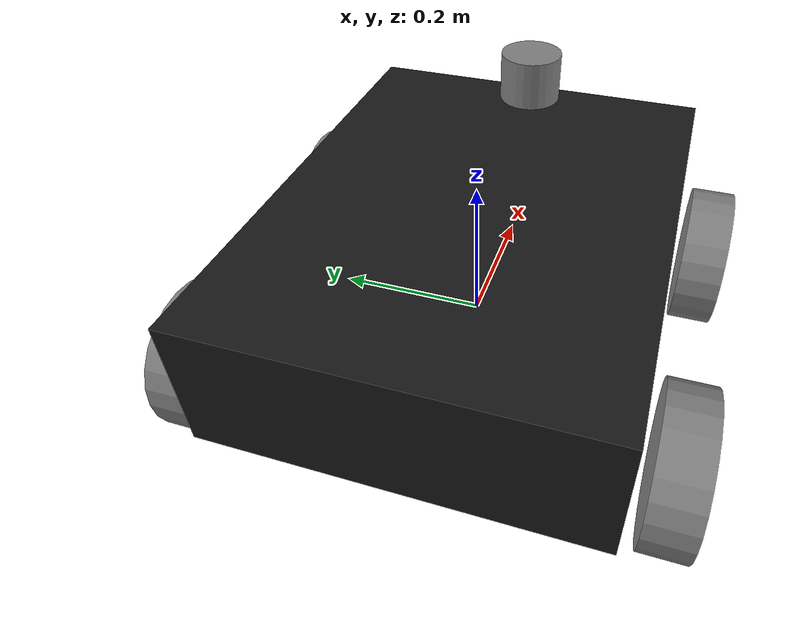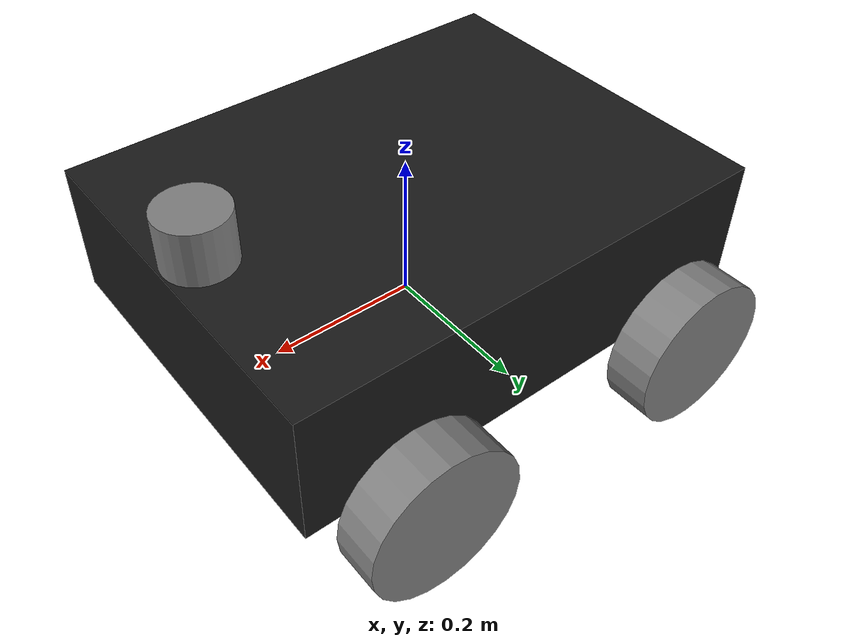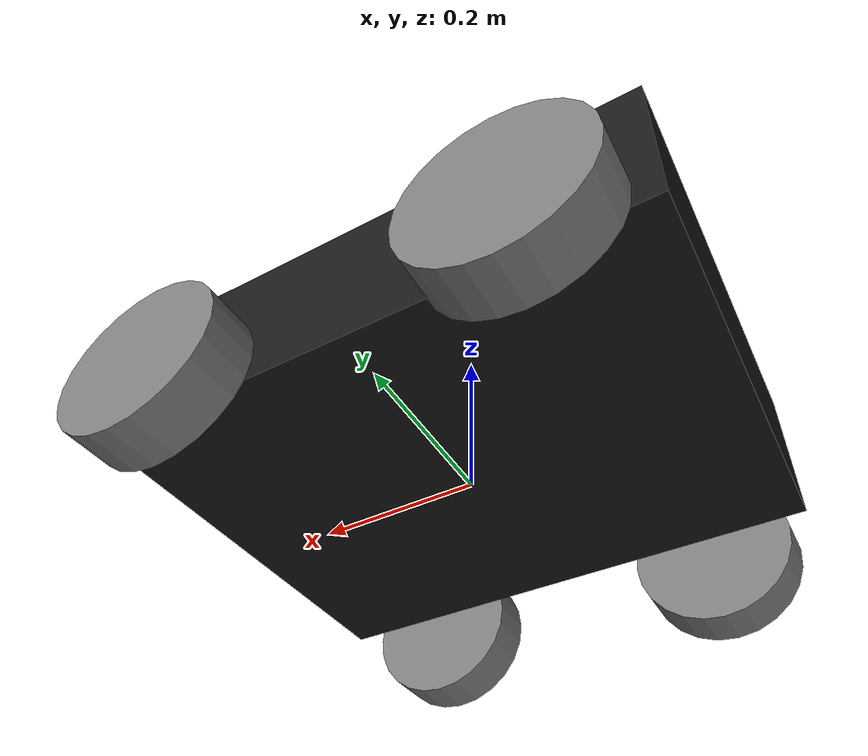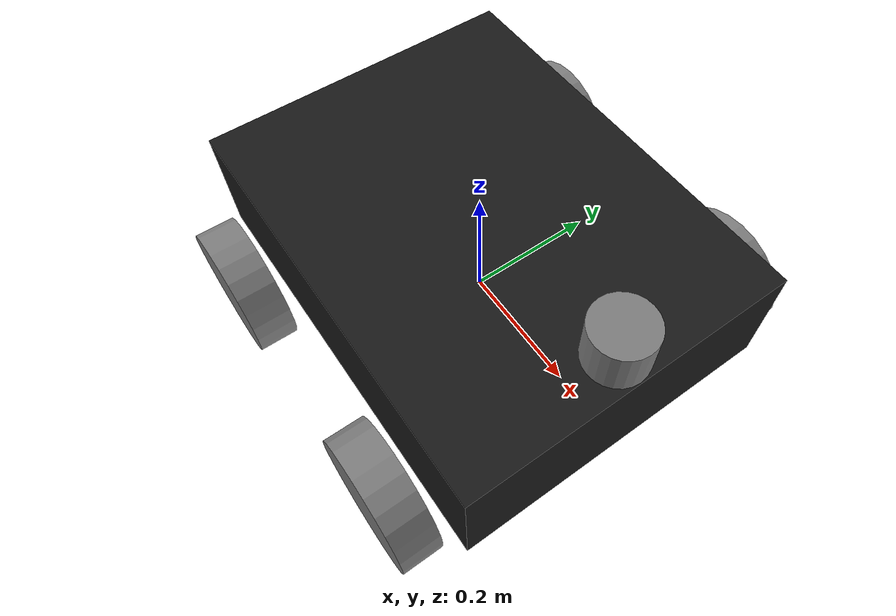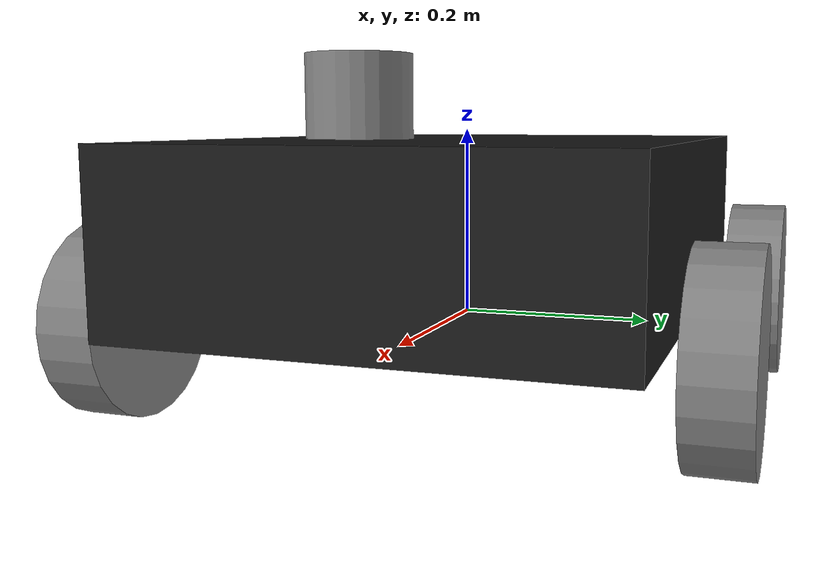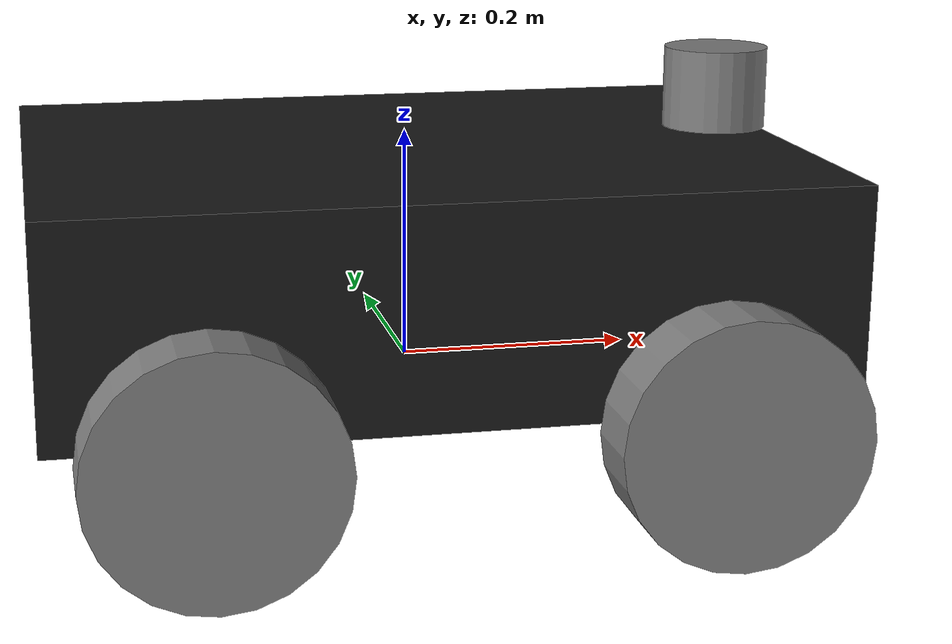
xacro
<?xml version="1.0"?>
<robot name="agv_robot" xmlns:xacro="http://www.ros.org/wiki/xacro">

  <xacro:arg name="namespace" default="agv"/>
  <xacro:arg name="prefix" default=""/>
  <xacro:arg name="enable_ros2_control" default="true"/>

  <xacro:property name="PI" value="3.14159265"/>
  <xacro:property name="robot_namespace" value="$(arg namespace)"/>
  <xacro:property name="prefix" value="$(arg prefix)"/>
  <xacro:property name="base_x"       value="0.65"/>
  <xacro:property name="base_y"       value="0.50"/>
  <xacro:property name="base_z"       value="0.18"/>
  <xacro:property name="wheel_r"      value="0.10"/>
  <xacro:property name="wheel_w"      value="0.06"/>
  <xacro:property name="track"        value="0.30"/>
  <xacro:property name="wheel_base_x" value="0.20"/>

  <material name="agv_black"> <color rgba="0.1 0.1 0.1 1.0"/></material>
  <material name="agv_grey">  <color rgba="0.5 0.5 0.5 1.0"/></material>
  <material name="agv_yellow"><color rgba="1.0 0.8 0.0 1.0"/></material>

  <link name="${prefix}base_footprint">
    <visual><geometry><sphere radius="0.001"/></geometry></visual>
  </link>

  <joint name="${prefix}base_footprint_joint" type="fixed">
    <parent link="${prefix}base_footprint"/>
    <child  link="${prefix}base_link"/>
    <origin xyz="0 0 ${wheel_r}" rpy="0 0 0"/>
  </joint>

  <link name="${prefix}base_link">
    <visual>
      <geometry><box size="${base_x} ${base_y} ${base_z}"/></geometry>
      <material name="agv_black"/> </visual>
    <collision>
      <geometry><box size="${base_x} ${base_y} ${base_z}"/></geometry>
    </collision>
    <inertial>
      <origin xyz="0 0 -0.05" rpy="0 0 0"/>
      <mass value="40.0"/>
      <inertia ixx="0.8" ixy="0.0" ixz="0.0" iyy="1.2" iyz="0.0" izz="1.5"/>
    </inertial>
  </link>

  <gazebo reference="${prefix}base_link">
    <material>Gazebo/Black</material>
  </gazebo>

  <xacro:macro name="wheel" params="name px py">
    <joint name="${prefix}${name}_joint" type="continuous">
      <parent link="${prefix}base_link"/>
      <child  link="${prefix}${name}_link"/>
      <origin xyz="${px} ${py} ${-base_z/2}" rpy="${-PI/2} 0 0"/>
      <axis xyz="0 0 1"/>
      <dynamics damping="0.1" friction="0.5"/>
    </joint>
    <link name="${prefix}${name}_link">
      <visual>
        <geometry><cylinder radius="${wheel_r}" length="${wheel_w}"/></geometry>
        <material name="agv_grey"/>
      </visual>
      <collision>
        <geometry><cylinder radius="${wheel_r-0.001}" length="${wheel_w}"/></geometry>
      </collision>
      <inertial>
        <mass value="2.5"/>
        <inertia ixx="0.008" ixy="0" ixz="0" iyy="0.008" iyz="0" izz="0.012"/>
      </inertial>
    </link>
  </xacro:macro>

  <xacro:wheel name="front_left_wheel"  px=" ${wheel_base_x}" py=" ${track}"/>
  <xacro:wheel name="front_right_wheel" px=" ${wheel_base_x}" py="-${track}"/>
  <xacro:wheel name="rear_left_wheel"   px="-${wheel_base_x}" py=" ${track}"/>
  <xacro:wheel name="rear_right_wheel"  px="-${wheel_base_x}" py="-${track}"/>

  <joint name="${prefix}lidar_joint" type="fixed">
    <parent link="${prefix}base_link"/>
    <child  link="${prefix}lidar_link"/>
    <origin xyz="0.28 0.0 ${base_z/2+0.04}" rpy="0 0 0"/>
  </joint>
  <link name="${prefix}lidar_link">
    <visual>
      <geometry><cylinder radius="0.045" length="0.07"/></geometry>
      <material name="agv_grey"/>
    </visual>
    <inertial><mass value="0.25"/><inertia ixx="0.0002" ixy="0" ixz="0" iyy="0.0002" iyz="0" izz="0.0003"/></inertial>
  </link>

  <gazebo reference="${prefix}lidar_link">
    <sensor name="${prefix}agv_lidar" type="ray">
      <always_on>true</always_on>
      <update_rate>10</update_rate>
      <visualize>true</visualize>
      <ray>
        <scan>
          <horizontal>
            <samples>720</samples>
            <resolution>1</resolution>
            <min_angle>${-PI}</min_angle>
            <max_angle>${PI}</max_angle>
          </horizontal>
        </scan>
        <range>
          <min>0.12</min>
          <max>12.0</max>
          <resolution>0.01</resolution>
        </range>
        <noise>
          <type>gaussian</type>
          <mean>0.0</mean>
          <stddev>0.01</stddev>
        </noise>
      </ray>
      <plugin name="${prefix}agv_lidar_controller" filename="libgazebo_ros_ray_sensor.so">
        <ros>
          <namespace>/${robot_namespace}</namespace>
          <remapping>~/out:=scan</remapping>
        </ros>
        <output_type>sensor_msgs/LaserScan</output_type>
        <frame_name>${prefix}lidar_link</frame_name>
      </plugin>
    </sensor>
  </gazebo>

  <xacro:if value="$(arg enable_ros2_control)">
    <ros2_control name="${prefix}agv_hardware" type="system">
      <hardware><plugin>gazebo_ros2_control/GazeboSystem</plugin></hardware>
      <joint name="${prefix}front_left_wheel_joint">
        <command_interface name="velocity"><param name="min">-3.0</param><param name="max">3.0</param></command_interface>
        <state_interface name="position"/><state_interface name="velocity"/>
      </joint>
      <joint name="${prefix}front_right_wheel_joint">
        <command_interface name="velocity"><param name="min">-3.0</param><param name="max">3.0</param></command_interface>
        <state_interface name="position"/><state_interface name="velocity"/>
      </joint>
      <joint name="${prefix}rear_left_wheel_joint">
        <command_interface name="velocity"><param name="min">-3.0</param><param name="max">3.0</param></command_interface>
        <state_interface name="position"/><state_interface name="velocity"/>
      </joint>
      <joint name="${prefix}rear_right_wheel_joint">
        <command_interface name="velocity"><param name="min">-3.0</param><param name="max">3.0</param></command_interface>
        <state_interface name="position"/><state_interface name="velocity"/>
      </joint>
    </ros2_control>

    <gazebo>
      <plugin name="${prefix}gazebo_ros2_control" filename="libgazebo_ros2_control.so">
        <parameters>$(find agv_description)/config/ros2_controllers.yaml</parameters>
      </plugin>
    </gazebo>
  </xacro:if>

  <gazebo>
    <plugin name="${prefix}diff_drive_controller" filename="libgazebo_ros_diff_drive.so">
      <ros><namespace>/${robot_namespace}</namespace></ros>
      <left_joint>${prefix}rear_left_wheel_joint</left_joint>
      <right_joint>${prefix}rear_right_wheel_joint</right_joint>
      <wheel_separation>${track * 2}</wheel_separation>
      <wheel_diameter>${wheel_r * 2}</wheel_diameter>
      <max_wheel_torque>150.0</max_wheel_torque> <max_wheel_acceleration>1.0</max_wheel_acceleration>
      <publish_odom>true</publish_odom>
      <publish_odom_tf>true</publish_odom_tf>
      <odometry_frame>${prefix}odom</odometry_frame>
      <robot_base_frame>${prefix}base_footprint</robot_base_frame>
      <command_topic>cmd_vel</command_topic>
    </plugin>
  </gazebo>

  <xacro:macro name="wheel_physics" params="name mu">
    <gazebo reference="${prefix}${name}_link">
      <mu1>${mu}</mu1>
      <mu2>${mu}</mu2>
      <kp>1000000.0</kp>
      <kd>100.0</kd>
      <minDepth>0.001</minDepth>
    </gazebo>
  </xacro:macro>

  <xacro:wheel_physics name="front_left_wheel"  mu="0.01"/>
  <xacro:wheel_physics name="front_right_wheel" mu="0.01"/>
  <xacro:wheel_physics name="rear_left_wheel"   mu="1.5"/>
  <xacro:wheel_physics name="rear_right_wheel"  mu="1.5"/>

</robot>
